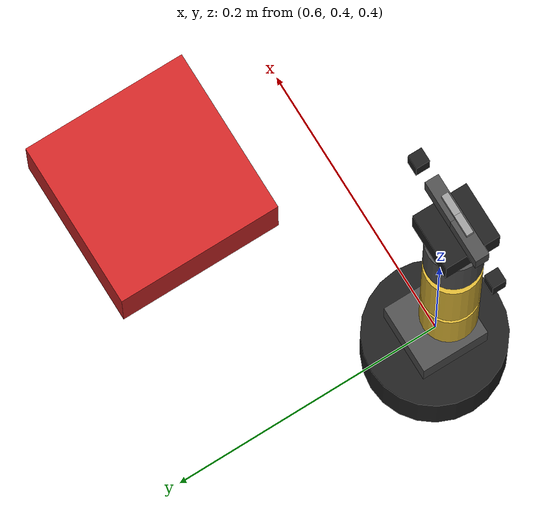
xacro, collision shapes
<?xml version="1.0"?>
<robot name="learm" xmlns:xacro="http://www.ros.org/wiki/xacro">

 <xacro:include filename="$(find fit_description)/urdf/arm.xacro" />
 <xacro:include filename="$(find fit_description)/urdf/gazebo.xacro" />
 <xacro:include filename="$(find fit_description)/urdf/ros2control.xacro" />
 <xacro:include filename="$(find fit_description)/urdf/sensors.xacro" />

</robot>

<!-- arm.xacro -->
<robot name="learm" xmlns:xacro="http://www.ros.org/wiki/xacro">

<xacro:property name="PI" value="3.14159265359" />

<link name="world"/>

  <link name="base_link">
    <inertial>
      <origin xyz="0 0 0.03" rpy="0 0 0"/>
      <mass value="1.0"/>
      <inertia ixx="0.01" ixy="0" ixz="0" iyy="0.01" iyz="0" izz="0.01"/>
    </inertial>
    <visual>
      <geometry>
        <mesh filename="package://fit_description/meshes/base.stl"/>
      </geometry>
    </visual>
    <collision>
      <geometry>
        <cylinder radius="0.05" length="0.06"/>
      </geometry>
    </collision>
  </link>
  <link name="shoulder_link">
    <inertial>
      <origin xyz="0 0 0.014" rpy="0 0 0"/>
      <mass value="0.5"/>
      <inertia ixx="0.001" ixy="0" ixz="0" iyy="0.001" iyz="0" izz="0.001"/>
    </inertial>
    <visual>
      <geometry>
        <mesh filename="package://fit_description/meshes/shoulder.stl"/>
      </geometry>
    </visual>
    <collision>
      <geometry>
        <box size="0.05 0.05 0.028"/>
      </geometry>
    </collision>
  </link>
  <link name="humerus_link">
    <inertial>
      <origin xyz="0 0 0.0525" rpy="0 0 0"/>
      <mass value="0.3"/>
      <inertia ixx="0.001" ixy="0" ixz="0" iyy="0.001" iyz="0" izz="0.001"/>
    </inertial>
    <visual>
      <geometry>
        <mesh filename="package://fit_description/meshes/humerus.stl"/>
      </geometry>
    </visual>
    <collision>
      <geometry>
        <cylinder radius="0.02" length="0.105"/>
      </geometry>
    </collision>
  </link>
  <link name="forearm_link">
    <inertial>
      <origin xyz="0 0 0.045" rpy="0 0 0"/>
      <mass value="0.25"/>
      <inertia ixx="0.001" ixy="0" ixz="0" iyy="0.001" iyz="0" izz="0.0005"/>
    </inertial>
    <visual>
      <geometry>
        <mesh filename="package://fit_description/meshes/forearm.stl"/>
      </geometry>
    </visual>
    <collision>
      <geometry>
        <cylinder radius="0.02" length="0.09"/>
      </geometry>
    </collision>
  </link>
  <link name="wrist_link">
    <inertial>
      <origin xyz="0 0 0.03" rpy="0 0 0"/>
      <mass value="0.2"/>
      <inertia ixx="0.0005" ixy="0" ixz="0" iyy="0.0005" iyz="0" izz="0.0003"/>
    </inertial>
    <visual>
      <origin xyz="0 0 0" rpy="0 0 0"/>
      <geometry>
        <mesh filename="package://fit_description/meshes/wrist.stl"/>
      </geometry>
    </visual>
    <collision>
      <geometry>
        <cylinder radius="0.02" length="0.06"/>
      </geometry>
    </collision>
  </link>
  <link name="hand_link">
    <inertial>
      <origin xyz="0 0 0.015" rpy="0 0 0"/>
      <mass value="0.15"/>
      <inertia ixx="0.0003" ixy="0" ixz="0" iyy="0.0003" iyz="0" izz="0.0002"/>
    </inertial>
    <visual>
      <geometry>
        <mesh filename="package://fit_description/meshes/hand.stl"/>
      </geometry>
    </visual>
    <collision>
      <geometry>
        <box size="0.04 0.04 0.03"/>
      </geometry>
    </collision>
  </link>
  <link name="grip_left_link">
    <inertial>
      <origin xyz="0 0 0.015" rpy="0 0 0"/>
      <mass value="0.05"/>
      <inertia ixx="0.0001" ixy="0" ixz="0" iyy="0.0001" iyz="0" izz="0.0001"/>
    </inertial>
    <visual>
      <geometry>
        <mesh filename="package://fit_description/meshes/carpal-left.stl"/>
      </geometry>
    </visual>
    <collision>
      <geometry>
        <box size="0.01 0.02 0.03"/>
      </geometry>
    </collision>
  </link>
  <link name="grip_right_link">
    <inertial>
      <origin xyz="0 0 0.015" rpy="0 0 0"/>
      <mass value="0.05"/>
      <inertia ixx="0.0001" ixy="0" ixz="0" iyy="0.0001" iyz="0" izz="0.0001"/>
    </inertial>
    <visual>
      <geometry>
        <mesh filename="package://fit_description/meshes/carpal-right.stl"/>
      </geometry>
    </visual>
    <collision>
      <geometry>
        <box size="0.01 0.02 0.03"/>
      </geometry>
    </collision>
  </link>
  <link name="tendon_left_link">
    <inertial>
      <origin xyz="0 0 0.01" rpy="0 0 0"/>
      <mass value="0.02"/>
      <inertia ixx="1e-05" ixy="0" ixz="0" iyy="1e-05" iyz="0" izz="1e-05"/>
    </inertial>
    <visual>
      <geometry>
        <mesh filename="package://fit_description/meshes/tendon.stl"/>
      </geometry>
    </visual>
    <collision>
      <geometry>
        <box size="0.005 0.005 0.02"/>
      </geometry>
    </collision>
  </link>
  <link name="tendon_right_link">
    <inertial>
      <origin xyz="0 0 0.01" rpy="0 0 0"/>
      <mass value="0.02"/>
      <inertia ixx="1e-05" ixy="0" ixz="0" iyy="1e-05" iyz="0" izz="1e-05"/>
    </inertial>
    <visual>
      <geometry>
        <mesh filename="package://fit_description/meshes/tendon.stl"/>
      </geometry>
    </visual>
    <collision>
      <geometry>
        <box size="0.005 0.005 0.02"/>
      </geometry>
    </collision>
  </link>
  <link name="finger_left_link">
    <inertial>
      <origin xyz="0 0 0.01" rpy="0 0 0"/>
      <mass value="0.02"/>
      <inertia ixx="1e-05" ixy="0" ixz="0" iyy="1e-05" iyz="0" izz="1e-05"/>
    </inertial>
    <visual>
      <geometry>
        <mesh filename="package://fit_description/meshes/finger.stl"/>
      </geometry>
    </visual>
    <collision>
      <geometry>
        <box size="0.01 0.01 0.02"/>
      </geometry>
    </collision>
  </link>
  <link name="finger_right_link">
    <inertial>
      <origin xyz="0 0 0.01" rpy="0 0 0"/>
      <mass value="0.02"/>
      <inertia ixx="1e-05" ixy="0" ixz="0" iyy="1e-05" iyz="0" izz="1e-05"/>
    </inertial>
    <visual>
      <origin rpy="0 0 3.14159"/>
      <geometry>
        <mesh filename="package://fit_description/meshes/finger.stl"/>
      </geometry>
    </visual>
    <collision>
      <geometry>
        <box size="0.01 0.01 0.02"/>
      </geometry>
    </collision>
  </link>

   <joint name="virtual_joint" type="fixed">
    <parent link="world"/>
    <child link="base_link"/>
    <origin xyz="0.6 0.4 0.35" rpy="0 0 1.57"/>
  </joint>

  <joint name="shoulder_pan" type="revolute">
    <parent link="base_link"/>
    <child link="shoulder_link"/>
    <origin xyz="0 0 0.059"/>
    <axis xyz="0 0 1"/>
    <limit lower="-1.57" upper="1.57" effort="1000" velocity="0.5"/>
  </joint>
  <joint name="shoulder_lift" type="revolute">
    <parent link="shoulder_link"/>
    <child link="humerus_link"/>
    <origin xyz="-0.010 0 0.028"/>
    <axis xyz="0 1 0"/>
    <limit lower="-1.57" upper="1.57" effort="1000" velocity="0.5"/>
  </joint>
  <joint name="elbow" type="revolute">
    <parent link="humerus_link"/>
    <child link="forearm_link"/>
    <origin xyz="0 0 0.105"/>
    <axis xyz="0 -1 0"/>
    <limit lower="-1.57" upper="1.57" effort="1000" velocity="0.5"/>
  </joint>
  <joint name="wrist_flex" type="revolute">
    <parent link="forearm_link"/>
    <child link="wrist_link"/>
    <origin xyz="0 0 0.090"/>
    <axis xyz="0 -1 0"/>
    <limit lower="-1.57" upper="1.57" effort="1000" velocity="0.5"/>
  </joint>
  <joint name="wrist_roll" type="revolute">
    <parent link="wrist_link"/>
    <child link="hand_link"/>
    <origin xyz="0 0 0.060"/>
    <axis xyz="0 0 1"/>
    <limit lower="-1.57" upper="1.57" effort="1000" velocity="0.5"/>
  </joint>
  <joint name="grip_left" type="revolute">
    <parent link="hand_link"/>
    <child link="grip_left_link"/>
    <origin xyz="0 0.015 0.030" rpy="-1.57 0 0"/>
    <axis xyz="-1 0 0"/>
    <limit lower="-1.57" upper="1.57" effort="1000" velocity="0.5"/>
  </joint>
  <joint name="grip_right" type="revolute">
    <parent link="hand_link"/>
    <child link="grip_right_link"/>
    <origin xyz="0 -0.015 0.030" rpy="1.57 0 0"/>
    <axis xyz="-1 0 0"/>
    <limit lower="-1.57" upper="1.57" effort="1000" velocity="0.5"/>
    <mimic joint="grip_left" multiplier="-1" offset="0"/>
  </joint>
  <joint name="tendon_left" type="revolute">
    <parent link="hand_link"/>
    <child link="tendon_left_link"/>
    <origin xyz="0 0.005 0.050" rpy="-1.57 0 0"/>
    <axis xyz="-1 0 0"/>
    <limit lower="-1.57" upper="1.57" effort="1000" velocity="0.5"/>
    <mimic joint="grip_left" offset="0"/>
  </joint>
  <joint name="tendon_right" type="revolute">
    <parent link="hand_link"/>
    <child link="tendon_right_link"/>
    <origin xyz="0 -0.005 0.050" rpy="1.57 0 0"/>
    <axis xyz="-1 0 0"/>
    <limit lower="-1.57" upper="1.57" effort="1000" velocity="0.5"/>
    <mimic joint="grip_left" multiplier="-1" offset="0"/>
  </joint>
  <joint name="finger_left" type="revolute">
    <parent link="grip_left_link"/>
    <child link="finger_left_link"/>
    <origin xyz="0 0 0.030" rpy="1.57 0 0"/>
    <axis xyz="-1 0 0"/>
    <limit lower="-1.57" upper="1.57" effort="1000" velocity="0.5"/>
    <mimic joint="grip_left" multiplier="-1" offset="0"/>
  </joint>
  <joint name="finger_right" type="revolute">
    <parent link="grip_right_link"/>
    <child link="finger_right_link"/>
    <origin xyz="0 0 0.030" rpy="-1.57 0 0"/>
    <axis xyz="-1 0 0"/>
    <limit lower="-1.57" upper="1.57" effort="1000" velocity="0.5"/>
    <mimic joint="grip_left" offset="0"/>
  </joint>
</robot>

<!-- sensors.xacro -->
<robot name="fit" xmlns:xacro="http://www.ros.org/wiki/xacro">

    <link name="camera_link">
        <inertial>
            <origin xyz="0 0 0" rpy="0.0 0.0 0.0"/>
            <mass value="0.1"/>
            <inertia ixx="0.1" ixy="0.0" ixz="0.0" iyy="0.1" iyz="0.0" izz="0.1"/>
        </inertial>
        <visual>
            <origin xyz="0 0 0" rpy="0.0 0.0 0.0"/>
            <geometry>
                <box size="0.1 0.1 0.05"/>
            </geometry>
            <material name="red"/>
        </visual>
        <collision>
            <origin xyz="0 0 0" rpy="0.0 0.0 0.0"/>
            <geometry>
                <box size="0.1 0.1 0.05"/>
            </geometry>
            <material name="red"/>
        </collision>
    </link>

    <joint name="camera_joint" type="fixed">
        <origin xyz="0.2 0 1.0" rpy="0.0 0.0 0.0"/>
        <parent link="base_link"/>
        <child link="camera_link"/>
    </joint>

    <link name="camera_link_optical" />

    <joint name="camera_optical_joint" type="fixed">
        <parent link="camera_link"/>
        <child link="camera_link_optical"/>
        <origin xyz="0 0 0" rpy="${-pi/2} 0 ${-pi/2}"/>
    </joint>

    <gazebo reference="camera_link">
        <sensor name="camera" type="camera">
            <pose>0 0 0 0 1.57 0</pose>
            <visualize>true</visualize>
            <update_rate>10.0</update_rate>
            <alwaysOn>true</alwaysOn>
            <topic>camera/image_raw</topic>
            <gz_frame_id>camera_link_optical</gz_frame_id>
            <camera name="intel_realsense_r200">
                <camera_info_topic>camera/camera_info</camera_info_topic>
                <horizontal_fov>1.0</horizontal_fov>
                <image>
                    <width>640</width>
                    <height>320</height>
                    <format>R8G8B8</format>
                </image>
                <clip>
                    <near>0.05</near>
                    <far>8.0</far>
                </clip>
            </camera>
        </sensor>
  </gazebo>

</robot>
